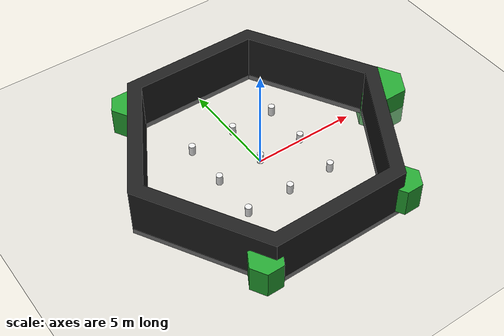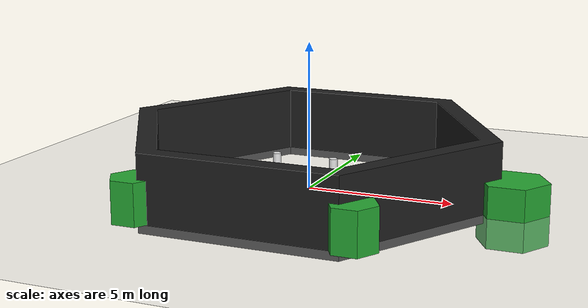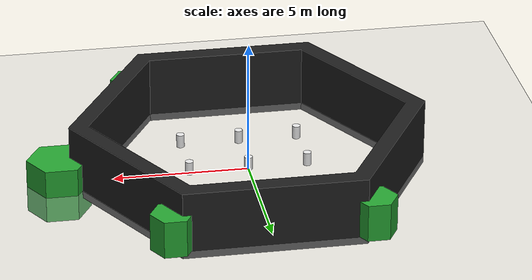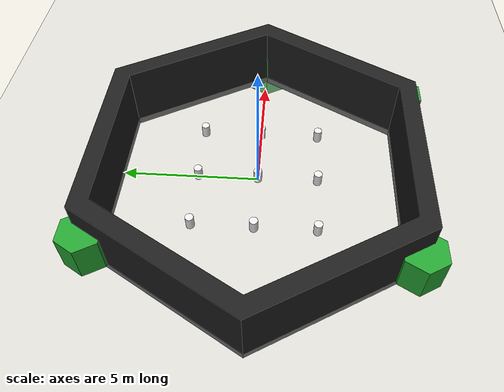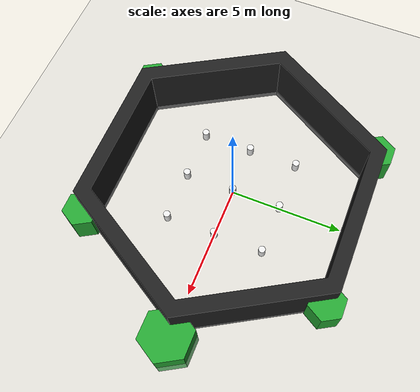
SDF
<?xml version="1.0"?>
<sdf version="1.6">
  <world name="default">

    <plugin
      filename="gz-sim-physics-system"
      name="gz::sim::systems::Physics">
    </plugin>
    <plugin
      filename="gz-sim-user-commands-system"
      name="gz::sim::systems::UserCommands">
    </plugin>
    <plugin
      filename="gz-sim-scene-broadcaster-system"
      name="gz::sim::systems::SceneBroadcaster">
    </plugin>
    <plugin
      filename="gz-sim-sensors-system"
      name="gz::sim::systems::Sensors">
      <render_engine>ogre2</render_engine>
    </plugin>
    <plugin
      filename="gz-sim-imu-system"
      name="gz::sim::systems::Imu">
    </plugin>

    <plugin
      filename="gz-sim-magnetometer-system"
      name="gz::sim::systems::Magnetometer">
    </plugin>

    <plugin
      filename="gz-sim-navsat-system"
      name="gz::sim::systems::NavSat">
    </plugin>

    <plugin
      filename="gz-sim-user-commands-system"
      name="gz::sim::systems::UserCommands">
    </plugin>

    <!-- Set the coordinates for the world origin -->
    <spherical_coordinates>
      <surface_model>EARTH_WGS84</surface_model>
      <world_frame_orientation>ENU</world_frame_orientation>
      <latitude_deg>38.161479</latitude_deg>
      <longitude_deg>-122.454630</longitude_deg>
      <elevation>488.0</elevation>
    </spherical_coordinates>

    <include>
      <uri>https://fuel.gazebosim.org/1.0/OpenRobotics/models/Ground Plane</uri>
    </include>

    <include>
      <uri>https://fuel.gazebosim.org/1.0/OpenRobotics/models/Sun</uri>
    </include>

    <scene>
      <shadows>false</shadows>
    </scene>

    <gui fullscreen='0'>
      <camera name='user_camera'>
        <pose frame=''>0.319654 -0.235002 9.29441 0 1.5138 0.009599</pose>
        <view_controller>orbit</view_controller>
        <projection_type>perspective</projection_type>
      </camera>
    </gui>

    <physics type="ode">
      <real_time_update_rate>1000.0</real_time_update_rate>
      <max_step_size>0.001</max_step_size>
      <real_time_factor>1</real_time_factor>
      <ode>
        <solver>
          <type>quick</type>
          <iters>150</iters>
          <precon_iters>0</precon_iters>
          <sor>1.400000</sor>
          <use_dynamic_moi_rescaling>1</use_dynamic_moi_rescaling>
        </solver>
        <constraints>
          <cfm>0.00001</cfm>
          <erp>0.2</erp>
          <contact_max_correcting_vel>2000.000000</contact_max_correcting_vel>
          <contact_surface_layer>0.01000</contact_surface_layer>
        </constraints>
      </ode>
    </physics>

    <model name="turtlebot3_world">
      <static>1</static>
      <include>
        <uri>model://turtlebot3_world</uri>
      </include>
    </model>

  </world>
</sdf>

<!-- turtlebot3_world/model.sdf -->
<sdf version='1.5'>
    <!-- Draw Circle -->
    <model name='ros_symbol'>
      <static>1</static>
      <link name='symbol'>
        <collision name='one_one'>
          <pose>-2.2 -2.2 0.25 0 0 0</pose>
          <geometry>
            <cylinder>
              <radius>0.15</radius>
              <length>0.5</length>
            </cylinder>
          </geometry>
          <max_contacts>10</max_contacts>
          <surface>
            <bounce/>
            <friction>
              <ode/>
            </friction>
            <contact>
              <ode/>
            </contact>
          </surface>
        </collision>

        <visual name='one_one'>
          <pose>-2.2 -2.2 0.25 0 0 0</pose>
          <geometry>
            <cylinder>
              <radius>0.15</radius>
              <length>0.5</length>
            </cylinder>
          </geometry>
          <material>
            <script>
              <uri>file://media/materials/scripts/gazebo.material</uri>
              <name>Gazebo/White</name>
            </script>
          </material>
        </visual>

        <collision name='one_two'>
          <pose>-2.2 0 0.25 0 0 0</pose>
          <geometry>
            <cylinder>
              <radius>0.15</radius>
              <length>0.5</length>
            </cylinder>
          </geometry>
          <max_contacts>10</max_contacts>
          <surface>
            <bounce/>
            <friction>
              <ode/>
            </friction>
            <contact>
              <ode/>
            </contact>
          </surface>
        </collision>

        <visual name='one_two'>
          <pose>-2.2 0 0.25 0 0 0</pose>
          <geometry>
            <cylinder>
              <radius>0.15</radius>
              <length>0.5</length>
            </cylinder>
          </geometry>
          <material>
            <script>
              <uri>file://media/materials/scripts/gazebo.material</uri>
              <name>Gazebo/White</name>
            </script>
          </material>
        </visual>

        <collision name='one_three'>
          <pose>-2.2 2.2 0.25 0 0 0</pose>
          <geometry>
            <cylinder>
              <radius>0.15</radius>
              <length>0.5</length>
            </cylinder>
          </geometry>
          <max_contacts>10</max_contacts>
          <surface>
            <bounce/>
            <friction>
              <ode/>
            </friction>
            <contact>
              <ode/>
            </contact>
          </surface>
        </collision>

        <visual name='one_three'>
          <pose>-2.2 2.2 0.25 0 0 0</pose>
          <geometry>
            <cylinder>
              <radius>0.15</radius>
              <length>0.5</length>
            </cylinder>
          </geometry>
          <material>
            <script>
              <uri>file://media/materials/scripts/gazebo.material</uri>
              <name>Gazebo/White</name>
            </script>
          </material>
        </visual>

        <collision name='two_one'>
          <pose>0 -2.2 0.25 0 0 0</pose>
          <geometry>
            <cylinder>
              <radius>0.15</radius>
              <length>0.5</length>
            </cylinder>
          </geometry>
          <max_contacts>10</max_contacts>
          <surface>
            <bounce/>
            <friction>
              <ode/>
            </friction>
            <contact>
              <ode/>
            </contact>
          </surface>
        </collision>

        <visual name='two_one'>
          <pose>0 -2.2 0.25 0 0 0</pose>
          <geometry>
            <cylinder>
              <radius>0.15</radius>
              <length>0.5</length>
            </cylinder>
          </geometry>
          <material>
            <script>
              <uri>file://media/materials/scripts/gazebo.material</uri>
              <name>Gazebo/White</name>
            </script>
          </material>
        </visual>

        <collision name='two_two'>
          <pose>0 0 0.25 0 0 0</pose>
          <geometry>
            <cylinder>
              <radius>0.15</radius>
              <length>0.5</length>
            </cylinder>
          </geometry>
          <max_contacts>10</max_contacts>
          <surface>
            <bounce/>
            <friction>
              <ode/>
            </friction>
            <contact>
              <ode/>
            </contact>
          </surface>
        </collision>

        <visual name='two_two'>
          <pose>0 0 0.25 0 0 0</pose>
          <geometry>
            <cylinder>
              <radius>0.15</radius>
              <length>0.5</length>
            </cylinder>
          </geometry>
          <material>
            <script>
              <uri>file://media/materials/scripts/gazebo.material</uri>
              <name>Gazebo/White</name>
            </script>
          </material>
        </visual>

        <collision name='two_three'>
          <pose>0 2.2 0.25 0 0 0</pose>
          <geometry>
            <cylinder>
              <radius>0.15</radius>
              <length>0.5</length>
            </cylinder>
          </geometry>
          <max_contacts>10</max_contacts>
          <surface>
            <bounce/>
            <friction>
              <ode/>
            </friction>
            <contact>
              <ode/>
            </contact>
          </surface>
        </collision>

        <visual name='two_three'>
          <pose>0 2.2 0.25 0 0 0</pose>
          <geometry>
            <cylinder>
              <radius>0.15</radius>
              <length>0.5</length>
            </cylinder>
          </geometry>
          <material>
            <script>
              <uri>file://media/materials/scripts/gazebo.material</uri>
              <name>Gazebo/White</name>
            </script>
          </material>
        </visual>

        <collision name='three_one'>
          <pose>2.2 -2.2 0.25 0 0 0</pose>
          <geometry>
            <cylinder>
              <radius>0.15</radius>
              <length>0.5</length>
            </cylinder>
          </geometry>
          <max_contacts>10</max_contacts>
          <surface>
            <bounce/>
            <friction>
              <ode/>
            </friction>
            <contact>
              <ode/>
            </contact>
          </surface>
        </collision>

        <visual name='three_one'>
          <pose>2.2 -2.2 0.25 0 0 0</pose>
          <geometry>
            <cylinder>
              <radius>0.15</radius>
              <length>0.5</length>
            </cylinder>
          </geometry>
          <material>
            <script>
              <uri>file://media/materials/scripts/gazebo.material</uri>
              <name>Gazebo/White</name>
            </script>
          </material>
        </visual>

        <collision name='three_two'>
          <pose>2.2 0 0.25 0 0 0</pose>
          <geometry>
            <cylinder>
              <radius>0.15</radius>
              <length>0.5</length>
            </cylinder>
          </geometry>
          <max_contacts>10</max_contacts>
          <surface>
            <bounce/>
            <friction>
              <ode/>
            </friction>
            <contact>
              <ode/>
            </contact>
          </surface>
        </collision>

        <visual name='three_two'>
          <pose>2.2 0 0.25 0 0 0</pose>
          <geometry>
            <cylinder>
              <radius>0.15</radius>
              <length>0.5</length>
            </cylinder>
          </geometry>
          <material>
            <script>
              <uri>file://media/materials/scripts/gazebo.material</uri>
              <name>Gazebo/White</name>
            </script>
          </material>
        </visual>

        <collision name='three_three'>
          <pose>2.2 2.2 0.25 0 0 0</pose>
          <geometry>
            <cylinder>
              <radius>0.15</radius>
              <length>0.5</length>
            </cylinder>
          </geometry>
          <max_contacts>10</max_contacts>
          <surface>
            <bounce/>
            <friction>
              <ode/>
            </friction>
            <contact>
              <ode/>
            </contact>
          </surface>
        </collision>

        <visual name='three_three'>
          <pose>2.2 2.2 0.25 0 0 0</pose>
          <geometry>
            <cylinder>
              <radius>0.15</radius>
              <length>0.5</length>
            </cylinder>
          </geometry>
          <material>
            <script>
              <uri>file://media/materials/scripts/gazebo.material</uri>
              <name>Gazebo/White</name>
            </script>
          </material>
        </visual>

        <!-- Draw Hexagon -->
        <collision name='head'>
          <pose>7.0 0 -1.0 0 0 0</pose>
          <geometry>
            <mesh>
              <uri>model://turtlebot3_world/meshes/hexagon.dae</uri>
              <scale>0.8 0.8 0.8</scale>
            </mesh>
          </geometry>
          <max_contacts>10</max_contacts>
          <surface>
            <bounce/>
            <friction>
              <ode/>
            </friction>
            <contact>
              <ode/>
            </contact>
          </surface>
        </collision>

        <visual name='head'>
          <pose>7.0 0 -1.0 0 0 0</pose>
          <geometry>
            <mesh>
              <uri>model://turtlebot3_world/meshes/hexagon.dae</uri>
              <scale>0.8 0.8 0.8</scale>
            </mesh>
          </geometry>
          <material>
            <script>
              <uri>file://media/materials/scripts/gazebo.material</uri>
              <name>Gazebo/Green</name>
            </script>
          </material>
        </visual>

        <collision name='left_hand'>
          <pose>3.6 5.4 0 0 0 0</pose>
          <geometry>
            <mesh>
              <uri>model://turtlebot3_world/meshes/hexagon.dae</uri>
              <scale>0.55 0.55 0.55</scale>
            </mesh>
          </geometry>
          <max_contacts>10</max_contacts>
          <surface>
            <bounce/>
            <friction>
              <ode/>
            </friction>
            <contact>
              <ode/>
            </contact>
          </surface>
        </collision>

        <visual name='left_hand'>
          <pose>3.6 5.4 0 0 0 0</pose>
          <geometry>
            <mesh>
              <uri>model://turtlebot3_world/meshes/hexagon.dae</uri>
              <scale>0.55 0.55 0.55</scale>
            </mesh>
          </geometry>
          <material>
            <script>
              <uri>file://media/materials/scripts/gazebo.material</uri>
              <name>Gazebo/Green</name>
            </script>
          </material>
        </visual>

        <collision name='right_hand'>
          <pose>3.6 -5.4 0 0 0 0</pose>
          <geometry>
            <mesh>
              <uri>model://turtlebot3_world/meshes/hexagon.dae</uri>
              <scale>0.55 0.55 0.55</scale>
            </mesh>
          </geometry>
          <max_contacts>10</max_contacts>
          <surface>
            <bounce/>
            <friction>
              <ode/>
            </friction>
            <contact>
              <ode/>
            </contact>
          </surface>
        </collision>

        <visual name='right_hand'>
          <pose>3.6 -5.4 0 0 0 0</pose>
          <geometry>
            <mesh>
              <uri>model://turtlebot3_world/meshes/hexagon.dae</uri>
              <scale>0.55 0.55 0.55</scale>
            </mesh>
          </geometry>
          <material>
            <script>
              <uri>file://media/materials/scripts/gazebo.material</uri>
              <name>Gazebo/Green</name>
            </script>
          </material>
        </visual>

        <collision name='left_foot'>
          <pose>-3.6 5.4 0 0 0 0</pose>
          <geometry>
            <mesh>
              <uri>model://turtlebot3_world/meshes/hexagon.dae</uri>
              <scale>0.55 0.55 0.55</scale>
            </mesh>
          </geometry>
          <max_contacts>10</max_contacts>
          <surface>
            <bounce/>
            <friction>
              <ode/>
            </friction>
            <contact>
              <ode/>
            </contact>
          </surface>
        </collision>

        <visual name='left_foot'>
          <pose>-3.6 5.4 0 0 0 0</pose>
          <geometry>
            <mesh>
              <uri>model://turtlebot3_world/meshes/hexagon.dae</uri>
              <scale>0.55 0.55 0.55</scale>
            </mesh>
          </geometry>
          <material>
            <script>
              <uri>file://media/materials/scripts/gazebo.material</uri>
              <name>Gazebo/Green</name>
            </script>
          </material>
        </visual>

        <collision name='right_foot'>
          <pose>-3.6 -5.4 0 0 0 0</pose>
          <geometry>
            <mesh>
              <uri>model://turtlebot3_world/meshes/hexagon.dae</uri>
              <scale>0.55 0.55 0.55</scale>
            </mesh>
          </geometry>
          <max_contacts>10</max_contacts>
          <surface>
            <bounce/>
            <friction>
              <ode/>
            </friction>
            <contact>
              <ode/>
            </contact>
          </surface>
        </collision>

        <visual name='right_foot'>
          <pose>-3.6 -5.4 0 0 0 0</pose>
          <geometry>
            <mesh>
              <uri>model://turtlebot3_world/meshes/hexagon.dae</uri>
              <scale>0.55 0.55 0.55</scale>
            </mesh>
          </geometry>
          <material>
            <script>
              <uri>file://media/materials/scripts/gazebo.material</uri>
              <name>Gazebo/Green</name>
            </script>
          </material>
        </visual>

        <!-- Draw Wall -->
        <collision name='body'>
        <pose>0 0 -0.3 0 0 -1.5708</pose>
        <geometry>
          <mesh>
            <uri>model://turtlebot3_world/meshes/wall.dae</uri>
            <scale>0.5 0.5 0.5</scale>
          </mesh>
        </geometry>
        <max_contacts>10</max_contacts>
        <surface>
          <bounce/>
          <friction>
            <ode/>
          </friction>
          <contact>
            <ode/>
          </contact>
        </surface>
      </collision>

      <visual name='body'>
        <pose>0 0 -0.3 0 0 -1.5708</pose>
        <geometry>
          <mesh>
            <uri>model://turtlebot3_world/meshes/wall.dae</uri>
            <scale>0.5 0.5 0.5</scale>
          </mesh>
        </geometry>
        <material>
          <script>
            <uri>file://media/materials/scripts/gazebo.material</uri>
            <name>Gazebo/FlatBlack</name>
          </script>
        </material>
      </visual>
    </link>
  </model>
</sdf>
